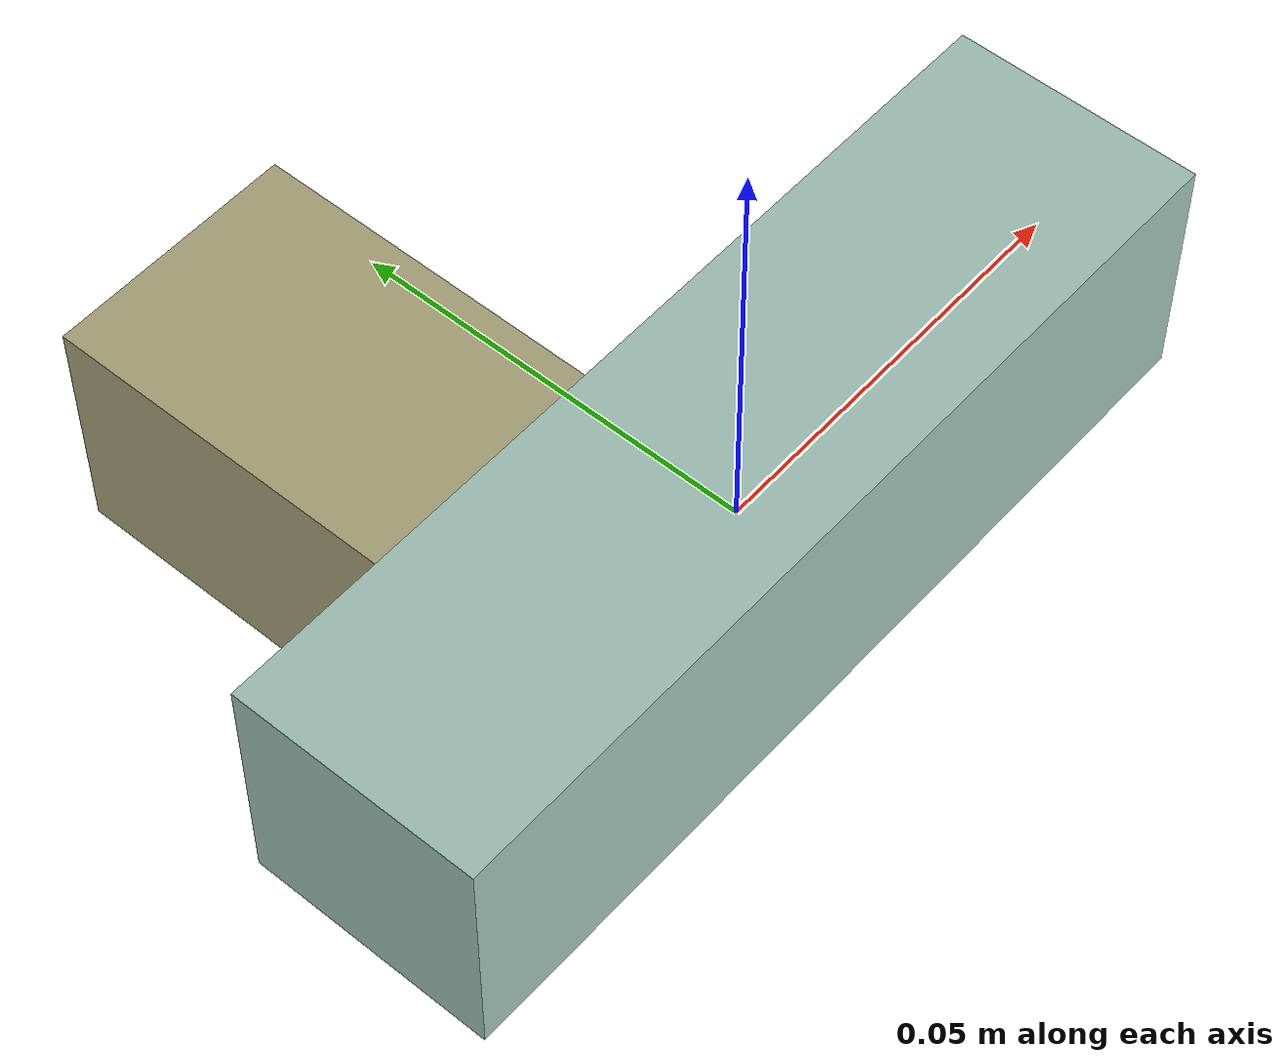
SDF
<sdf version="1.4"><world name="default"><model name="object0"><link name="link1"><pose>0 0 0 0 0 0</pose><inertial><pose>0 0 0 0 0 0</pose><mass>0.05919384457445722</mass><inertia><ixx>8.879076686168582e-06</ixx><ixy>0</ixy><iyy>6.371308003180663e-05</iyy><ixz>0</ixz><iyz>0</iyz><izz>6.371308003180663e-05</izz></inertia></inertial><visual name="link1_visual"><pose>0 0  0 0 0 0</pose><geometry><box><size>0.10961823069343929 0.03 0.03</size></box></geometry><material><diffuse>0.6257747747310545 0.7642393600713934 0.7186079495941362 1</diffuse></material></visual><collision><pose>0 0  0 0 0 0</pose><geometry><box><size>0.10961823069343929 0.03 0.03</size></box></geometry></collision></link><link name="link2"><pose>-0.020295364300526295 0.025149085112088486 0 0 0 0</pose><inertial><pose>0 0 0 0 0 0</pose><mass>0.03501928021420478</mass><inertia><ixx>1.4727328538113696e-05</ixx><ixy>0</ixy><iyy>5.080713904410876e-06</iyy><ixz>0</ixz><iyz>0</iyz><izz>1.4899506665833536e-05</izz></inertia></inertial><visual name="link2_visual"><pose>0 0  0 0 0 0</pose><geometry><box><size>0.03 0.06485051891519404 0.028999999999999998</size></box></geometry><material><diffuse>0.665711855587108 0.6444552007225944 0.4766547553301633 1</diffuse></material></visual><collision><pose>0 0  0 0 0 0</pose><geometry><box><size>0.03 0.06485051891519404 0.028999999999999998</size></box></geometry></collision></link><joint name="link_joint_0" type="fixed"><parent>link1</parent><child>link2</child><pose>0 0 0 0 0 0</pose><axis><xyz>0 0 1</xyz></axis></joint></model></world></sdf>
